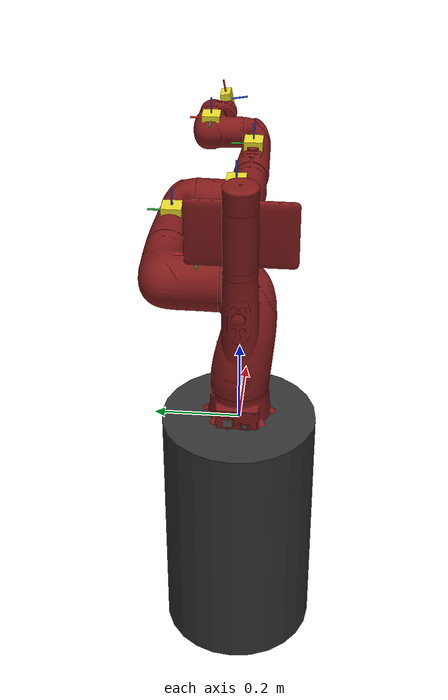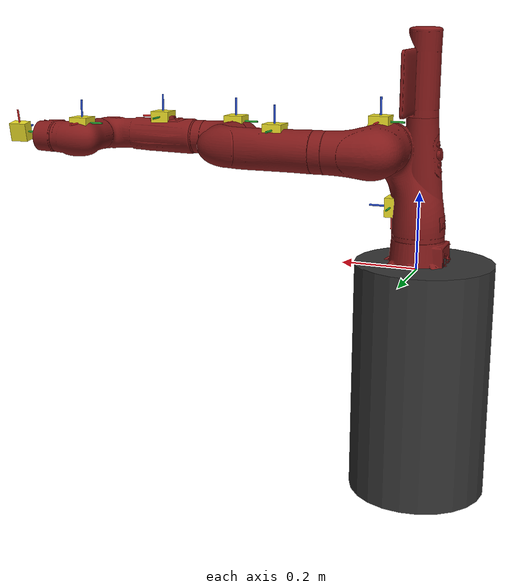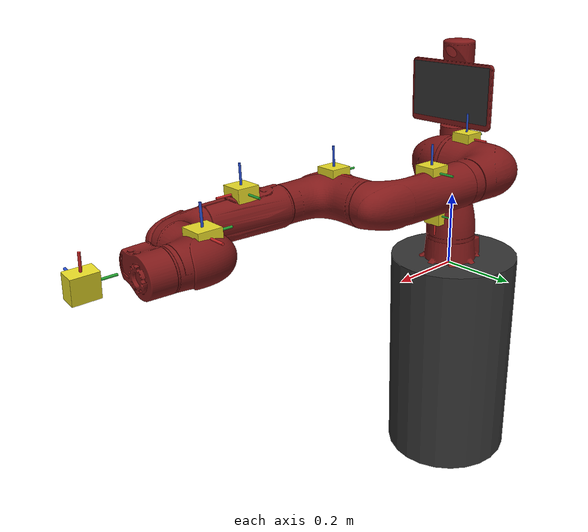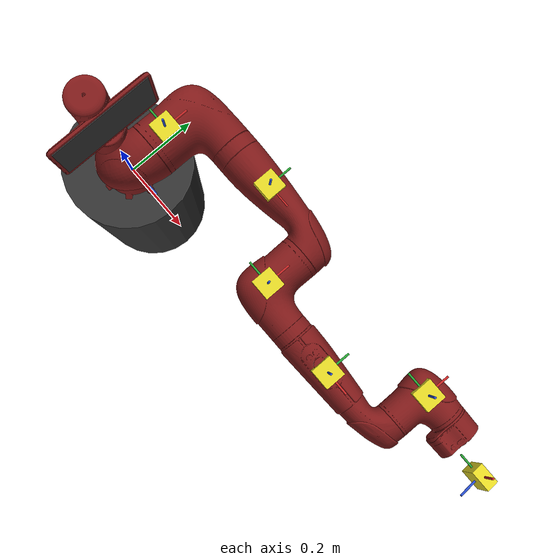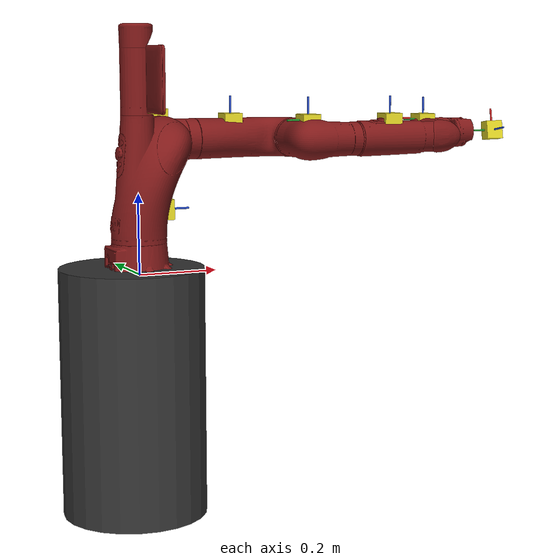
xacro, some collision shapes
<?xml version="1.0" ?>
<robot name="sawyer" xmlns:xacro="http://www.ros.org/wiki/xacro">

  <xacro:arg name="gazebo" default="false"/>
  <xacro:arg name="pedestal" default="true"/>
  <xacro:arg name="static" default="true"/>
  <xacro:arg name="electric_gripper" default="false"/>
  <!-- Sawyer Base URDF -->
  <xacro:include filename="$(find sawyer_description)/urdf/sawyer_base.urdf.xacro">
    <xacro:arg name="gazebo" value="${gazebo}"/>
    <xacro:arg name="pedestal" value="${pedestal}"/>
  </xacro:include>
  <xacro:if value="$(arg gazebo)">
  <xacro:include filename="$(find sawyer_description)/urdf/sawyer_base.gazebo.xacro">
    <xacro:arg name="static" value="${static}"/>
    <xacro:arg name="pedestal" value="${pedestal}"/>
  </xacro:include>
  </xacro:if>
  <!-- Electric Gripper End Effector -->
  <xacro:if value="$(arg electric_gripper)">
  <xacro:include filename="$(find sawyer_description)/urdf/sawyer_electric_gripper.urdf.xacro">
    <xacro:arg name="gazebo" value="${gazebo}"/>
  </xacro:include>
  </xacro:if>

  <xacro:include filename="$(find ros_robotic_skin)/robots/imu.xacro"/>
  <xacro:imu imu_id="0" xyz="0.07 0 0.08" rpy="0 1.57 0" connected_to="right_l0"/>
  <xacro:imu imu_id="1" xyz="-0.07 0 0.05" rpy="0 -1.57 0" connected_to="right_l1"/>
  <xacro:imu imu_id="2" xyz="-0.05 0.0 0.1" rpy="0 -1.57 0" connected_to="right_l2"/>
  <xacro:imu imu_id="3" xyz="-0.05 0 -0.10" rpy="0 -1.57 0" connected_to="right_l3"/>
  <xacro:imu imu_id="4" xyz="-0.05 0 0.10" rpy="0 -1.57 0" connected_to="right_l4"/>
  <xacro:imu imu_id="5" xyz="-0.04 0 0.1" rpy="0 -1.57 0" connected_to="right_l5"/>
  <xacro:imu imu_id="6" xyz="0.0 0.03 0.1" rpy="-1.57 0 0" connected_to="right_l6"/>
</robot>

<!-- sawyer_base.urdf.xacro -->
<robot name="sawyer" xmlns:xacro="http://www.ros.org/wiki/xacro">
  <xacro:arg name="gazebo" default="false"/>
  <xacro:arg name="pedestal" default="true"/>
  <material name="black">
    <color rgba="0 0 0 1"/>
  </material>
  <material name="darkgray">
    <color rgba=".2 .2 .2 1"/>
  </material>
  <material name="darkred">
    <color rgba=".5 .1 .1 1"/>
  </material>
  <material name="sawyer_red">
    <color rgba=".5 .1 .1 1"/>
  </material>
  <material name="sawyer_gray">
    <color rgba="0.75294 0.75294 0.75294 1"/>
  </material>
  <link name="base"/>
  <link name="torso">
    <visual>
      <origin rpy="0 0 0" xyz="0 0 0"/>
      <geometry>
        <box size="0.001 0.001 0.001"/>
      </geometry>
      <material name="darkgray">
        <color rgba=".2 .2 .2 1"/>
      </material>
    </visual>
<xacro:unless value="$(arg gazebo)">
    <inertial>
      <origin rpy="0 0 0" xyz="0.000000 0.000000 0.000000"/>
      <mass value="0.0001"/>
      <inertia ixx="1e-08" ixy="0" ixz="0" iyy="1e-08" iyz="0" izz="1e-08"/>
    </inertial>
</xacro:unless>
  </link>
<xacro:if value="$(arg pedestal)">
  <link name="pedestal">
    <visual>
      <origin rpy="1.57079632679 0 -1.57079632679" xyz="0.26 0.345 -0.91488"/>
      <geometry>
        <mesh filename="package://sawyer_description/meshes/sawyer_pv/pedestal.DAE"/>
      </geometry>
      <material name="darkgray"/>
    </visual>
    <collision>
      <origin rpy="0 0 0" xyz="-0.02 0 -0.29"/>
      <geometry>
        <cylinder length="0.62" radius="0.18"/>
      </geometry>
    </collision>
    <inertial>
      <origin rpy="0 0 0" xyz="0 0 -0.5"/>
      <mass value="60.86397744"/>
      <inertia ixx="5.0635929" ixy="0.00103417" ixz="0.80199628" iyy="6.08689388" iyz="0.00105311" izz="4.96191932"/>
    </inertial>
  </link>
  <link name="controller_box">
    <collision>
      <origin rpy="0 0 0" xyz="-0.325 0 -0.38"/>
      <geometry>
        <box size="0.22 0.4 0.53"/>
      </geometry>
    </collision>
  </link>
  <joint name="controller_box_fixed" type="fixed">
    <origin rpy="0 0 0" xyz="0.0 0.0 0.0"/>
    <parent link="base"/>
    <child link="controller_box"/>
  </joint>
  <link name="pedestal_feet">
    <collision>
      <origin rpy="0 0 0" xyz="-0.1225 0 -0.758"/>
      <geometry>
        <box size="0.77 0.7 0.31"/>
      </geometry>
    </collision>
  </link>
  <joint name="pedestal_feet_fixed" type="fixed">
    <origin rpy="0 0 0" xyz="0.0 0.0 0.0"/>
    <parent link="base"/>
    <child link="pedestal_feet"/>
  </joint>
  <joint name="pedestal_fixed" type="fixed">
    <origin rpy="0 0 0" xyz="0.0 0.0 0.0"/>
    <parent link="base"/>
    <child link="pedestal"/>
  </joint>
</xacro:if>
  <joint name="right_arm_mount" type="fixed">
    <origin rpy="0 0 0" xyz="0.0 0.0 0.0"/>
    <parent link="base"/>
    <child link="right_arm_base_link"/>
  </joint>
  <joint name="torso_t0" type="fixed">
    <origin rpy="0 0 0" xyz="0 0 0"/>
    <parent link="base"/>
    <child link="torso"/>
  </joint>
  <link name="right_arm_base_link">
    <inertial>
      <origin rpy="0 0 0" xyz="-0.0006241 -2.8025E-05 0.065404"/>
      <mass value="2.0687"/>
      <inertia ixx="0.0067599" ixy="-4.2024E-05" ixz="-6.1904E-07" iyy="0.0067877" iyz="1.5888E-05" izz="0.0074031"/>
    </inertial>
    <visual>
      <origin rpy="0 0 0" xyz="0 0 0"/>
      <geometry>
        <mesh filename="package://sawyer_description/meshes/sawyer_pv/base.DAE"/>
      </geometry>
      <material name="sawyer_red"/>
    </visual>
    <collision>
      <origin rpy="0 0 0" xyz="0 0 0.12"/>
      <geometry>
        <cylinder length="0.24" radius="0.08"/>
      </geometry>
    </collision>
  </link>
  <link name="right_l0">
    <inertial>
      <origin rpy="0 0 0" xyz="0.024366 0.010969 0.14363"/>
      <mass value="5.3213"/>
      <inertia ixx="0.053314" ixy="0.0047093" ixz="0.011734" iyy="0.057902" iyz="0.0080179" izz="0.023659"/>
    </inertial>
    <visual>
      <origin rpy="0 0 0" xyz="0 0 0"/>
      <geometry>
        <mesh filename="package://sawyer_description/meshes/sawyer_mp3/l0.DAE"/>
      </geometry>
      <material name="sawyer_red"/>
    </visual>
    <collision>
      <origin rpy="0 0 0" xyz="0.08 0 0.23"/>
      <geometry>
        <sphere radius="0.07"/>
      </geometry>
    </collision>
  </link>
  <joint name="right_j0" type="revolute">
    <origin rpy="0 0 0" xyz="0 0 0.08"/>
    <parent link="right_arm_base_link"/>
    <child link="right_l0"/>
    <axis xyz="0 0 1"/>
    <limit effort="80.0" lower="-3.0503" upper="3.0503" velocity="1.74"/>
<xacro:if value="$(arg gazebo)">
    <dynamics damping="5.0" friction="2.0"/>
</xacro:if>
  </joint>
  <link name="head">
    <inertial>
      <origin rpy="0 0 0" xyz="0.0053207 -2.6549E-05 0.1021"/>
      <mass value="1.5795"/>
      <inertia ixx="0.011833" ixy="-4.4669E-06" ixz="4.9425E-05" iyy="0.0082709" iyz="4.2124E-07" izz="0.0049661"/>
    </inertial>
    <visual>
      <origin rpy="0 0 0" xyz="0 0 0"/>
      <geometry>
        <mesh filename="package://sawyer_description/meshes/sawyer_pv/head.DAE"/>
      </geometry>
      <material name="sawyer_red"/>
    </visual>
    <collision>
      <origin rpy="0 0 0" xyz="0 0 0.08"/>
      <geometry>
        <sphere radius="0.18"/>
      </geometry>
    </collision>
  </link>
  <joint name="head_pan" type="revolute">
    <origin rpy="0 0 0" xyz="0 0 0.2965"/>
    <parent link="right_l0"/>
    <child link="head"/>
    <axis xyz="0 0 1"/>
    <limit effort="8" lower="-5.0952" upper="0.9064" velocity="1.8"/>
<xacro:if value="$(arg gazebo)">
    <dynamics damping="1.0" friction="0.5"/>
</xacro:if>
  </joint>
  <link name="right_torso_itb">
<xacro:unless value="$(arg gazebo)">
    <inertial>
      <origin rpy="0 0 0" xyz="0.000000 0.000000 0.000000"/>
      <mass value="0.0001"/>
      <inertia ixx="1e-08" ixy="0" ixz="0" iyy="1e-08" iyz="0" izz="1e-08"/>
    </inertial>
</xacro:unless>
  </link>
  <joint name="right_torso_itb" type="fixed">
    <origin rpy="0 -1.57079632679 0" xyz="-.055 0 .22"/>
    <parent link="right_l0"/>
    <child link="right_torso_itb"/>
    <axis xyz="0 0 1"/>
  </joint>
  <link name="right_l1">
    <inertial>
      <origin rpy="0 0 0" xyz="-0.0030849 -0.026811 0.092521"/>
      <mass value="4.505"/>
      <inertia ixx="0.022398" ixy="-0.00023986" ixz="-0.00029362" iyy="0.014613" iyz="-0.0060875" izz="0.017295"/>
    </inertial>
    <visual>
      <origin rpy="0 0 0" xyz="0 0 0"/>
      <geometry>
        <mesh filename="package://sawyer_description/meshes/sawyer_mp3/l1.DAE"/>
      </geometry>
      <material name="sawyer_red"/>
    </visual>
    <collision>
      <origin rpy="0 0 0" xyz="0 0 0.1225"/>
      <geometry>
        <sphere radius="0.07"/>
      </geometry>
    </collision>
  </link>
  <joint name="right_j1" type="revolute">
    <origin rpy="-1.57079632679 1.57079632679 0" xyz="0.081 0.05 0.237"/>
    <parent link="right_l0"/>
    <child link="right_l1"/>
    <axis xyz="0 0 1"/>
    <limit effort="80.0" lower="-3.8095" upper="2.2736" velocity="1.328"/>
<xacro:if value="$(arg gazebo)">
    <dynamics damping="5.0" friction="2.0"/>
</xacro:if>
  </joint>
  <link name="right_l2">
    <inertial>
      <origin rpy="0 0 0" xyz="-0.00016044 -0.014967 0.13582"/>
      <mass value="1.745"/>
      <inertia ixx="0.025506" ixy="4.4101E-06" ixz="1.4955E-05" iyy="0.0253" iyz="-0.0033204" izz="0.0034179"/>
    </inertial>
    <visual>
      <origin rpy="0 0 0" xyz="0 0 0"/>
      <geometry>
        <mesh filename="package://sawyer_description/meshes/sawyer_pv/l2.DAE"/>
      </geometry>
      <material name="sawyer_red"/>
    </visual>
    <collision>
      <origin rpy="0 0 0" xyz="0 0 0.08"/>
      <geometry>
        <cylinder length="0.34" radius="0.06"/>
      </geometry>
    </collision>
  </link>
  <joint name="right_j2" type="revolute">
    <origin rpy="1.57079632679 0 0" xyz="0 -0.14 0.1425"/>
    <parent link="right_l1"/>
    <child link="right_l2"/>
    <axis xyz="0 0 1"/>
    <limit effort="40.0" lower="-3.0426" upper="3.0426" velocity="1.957"/>
<xacro:if value="$(arg gazebo)">
    <dynamics damping="5.0" friction="2.0"/>
</xacro:if>
  </joint>
  <link name="right_l3">
    <inertial>
      <origin rpy="0 0 0" xyz="-0.0048135 -0.0281 -0.084154"/>
      <mass value="2.5097"/>
      <inertia ixx="0.01016" ixy="-9.7452E-06" ixz="0.00026624" iyy="0.0065685" iyz="0.0030316" izz="0.0069078"/>
    </inertial>
    <visual>
      <origin rpy="0 0 0" xyz="0 0 0"/>
      <geometry>
        <mesh filename="package://sawyer_description/meshes/sawyer_pv/l3.DAE"/>
      </geometry>
      <material name="sawyer_red"/>
    </visual>
    <collision>
      <origin rpy="0 0 0" xyz="0 -0.01 -0.12"/>
      <geometry>
        <sphere radius="0.06"/>
      </geometry>
    </collision>
  </link>
  <joint name="right_j3" type="revolute">
    <origin rpy="-1.57079632679 0 0" xyz="0 -0.042 0.26"/>
    <parent link="right_l2"/>
    <child link="right_l3"/>
    <axis xyz="0 0 1"/>
    <limit effort="40.0" lower="-3.0439" upper="3.0439" velocity="1.957"/>
 <xacro:if value="$(arg gazebo)">
    <dynamics damping="1.0" friction="0.5"/>
</xacro:if>
  </joint>
  <link name="right_l4">
    <inertial>
      <origin rpy="0 0 0" xyz="-0.0018844 0.0069001 0.1341"/>
      <mass value="1.1136"/>
      <inertia ixx="0.013557" ixy="1.8109E-05" ixz="0.00013523" iyy="0.013555" iyz="0.0010561" izz="0.0013658"/>
    </inertial>
    <visual>
      <origin rpy="0 0 0" xyz="0 0 0"/>
      <geometry>
        <mesh filename="package://sawyer_description/meshes/sawyer_pv/l4.DAE"/>
      </geometry>
      <material name="sawyer_red"/>
    </visual>
    <collision>
      <origin rpy="0 0 0" xyz="0 0 0.11"/>
      <geometry>
        <cylinder length="0.30" radius="0.045"/>
      </geometry>
    </collision>
  </link>
  <joint name="right_j4" type="revolute">
    <origin rpy="1.57079632679 0 0" xyz="0 -0.125 -0.1265"/>
    <parent link="right_l3"/>
    <child link="right_l4"/>
    <axis xyz="0 0 1"/>
    <limit effort="9.0" lower="-2.9761" upper="2.9761" velocity="3.485"/>
<xacro:if value="$(arg gazebo)">
    <dynamics damping="2.0" friction="1.0"/>
</xacro:if>
  </joint>
  <link name="right_arm_itb">
<xacro:unless value="$(arg gazebo)">
    <inertial>
      <origin rpy="0 0 0" xyz="0.000000 0.000000 0.000000"/>
      <mass value="0.0001"/>
      <inertia ixx="1e-08" ixy="0" ixz="0" iyy="1e-08" iyz="0" izz="1e-08"/>
    </inertial>
</xacro:unless>
  </link>
  <joint name="right_arm_itb" type="fixed">
    <origin rpy="0 -1.57079632679 0" xyz="-.055 0 .075"/>
    <parent link="right_l4"/>
    <child link="right_arm_itb"/>
    <axis xyz="0 0 1"/>
  </joint>
  <link name="right_l5">
    <inertial>
      <origin rpy="0 0 0" xyz="0.0061133 -0.023697 0.076416"/>
      <mass value="1.5625"/>
      <inertia ixx="0.0047328" ixy="0.00011526" ixz="4.6269E-05" iyy="0.0029676" iyz="-0.0011557" izz="0.0031762"/>
    </inertial>
    <visual>
      <origin rpy="0 0 0" xyz="0 0 0"/>
      <geometry>
        <mesh filename="package://sawyer_description/meshes/sawyer_pv/l5.DAE"/>
      </geometry>
      <material name="sawyer_red"/>
    </visual>
    <collision>
      <origin rpy="0 0 0" xyz="0 0 0.1"/>
      <geometry>
        <sphere radius="0.06"/>
      </geometry>
    </collision>
  </link>
  <joint name="right_j5" type="revolute">
    <origin rpy="-1.57079632679 0 0" xyz="0 0.031 0.275"/>
    <parent link="right_l4"/>
    <child link="right_l5"/>
    <axis xyz="0 0 1"/>
    <limit effort="9.0" lower="-2.9761" upper="2.9761" velocity="3.485"/>
<xacro:if value="$(arg gazebo)">
    <dynamics damping="1.0" friction="0.5"/>
</xacro:if>
  </joint>
  <link name="right_hand_camera"/>
  <joint name="right_hand_camera" type="fixed">
    <origin rpy="0 1.57079632679 0" xyz="0.039552 -0.033 0.0695"/>
    <parent link="right_l5"/>
    <child link="right_hand_camera"/>
    <axis xyz="0 0 0"/>
  </joint>
  <link name="right_wrist"/>
  <joint name="right_wrist" type="fixed">
    <origin rpy="1.57079632679 0 0" xyz="0 0 0.10541"/>
    <parent link="right_l5"/>
    <child link="right_wrist"/>
    <axis xyz="0 0 0"/>
  </joint>
  <link name="right_l6">
    <inertial>
      <origin rpy="0 0 0" xyz="-8.0726E-06 0.0085838 -0.0049566"/>
      <mass value="0.3292"/>
      <inertia ixx="0.00031105" ixy="1.4771E-06" ixz="-3.7074E-07" iyy="0.00021549" iyz="-8.4533E-06" izz="0.00035976"/>
    </inertial>
    <visual>
      <origin rpy="0 0 0" xyz="0 0 0"/>
      <geometry>
        <mesh filename="package://sawyer_description/meshes/sawyer_mp1/l6.DAE"/>
      </geometry>
      <material name="sawyer_red"/>
    </visual>
    <collision>
      <origin rpy="0 0 0" xyz="0 0.015 -0.01"/>
      <geometry>
        <cylinder length="0.05" radius="0.055"/>
      </geometry>
    </collision>
  </link>
  <joint name="right_j6" type="revolute">
    <origin rpy="-1.57079632679 -0.17453 3.1416" xyz="0 -0.11 0.1053"/>
    <parent link="right_l5"/>
    <child link="right_l6"/>
    <axis xyz="0 0 1"/>
<xacro:if value="$(arg gazebo)">
    <limit effort="9.0" lower="-3.14" upper="3.14" velocity="4.545"/>
    <dynamics damping="1.0" friction="0.5"/>
</xacro:if>
<xacro:unless value="$(arg gazebo)">
    <limit effort="9.0" lower="-4.7124" upper="4.7124" velocity="4.545"/>
</xacro:unless>
  </joint>
  <link name="right_hand">
    <collision>
      <origin rpy="0 0 0" xyz="0 0 0.02"/>
      <geometry>
        <cylinder length="0.03" radius="0.035"/>
      </geometry>
    </collision>
<xacro:if value="$(arg gazebo)">
    <inertial>
      <origin rpy="0 0 0" xyz="0 0.1 0"/>
      <mass value="0.01"/>
      <inertia ixx="0.01" ixy="0.01" ixz="0.01" iyy="0.01" iyz="0.01" izz="0.01"/>
  </inertial>
</xacro:if>
<xacro:unless value="$(arg gazebo)">
    <inertial>
      <origin rpy="0 0 0" xyz="1.0E-08 1.0E-08 1.0E-08"/>
      <mass value="1.0E-08"/>
      <inertia ixx="1.0E-08" ixy="1.0E-08" ixz="1.0E-08" iyy="1.0E-08" iyz="1.0E-08" izz="1.0E-08"/>
    </inertial>
</xacro:unless>
  </link>
  <joint name="right_hand" type="fixed">
    <origin rpy="0 0 1.570796" xyz="0 0 0.0245"/>
    <axis xyz="0 0 1"/>
    <parent link="right_l6"/>
    <child link="right_hand"/>
  </joint>
  <link name="right_l1_2">
<xacro:unless value="$(arg gazebo)">
    <inertial>
      <origin rpy="0 0 0" xyz="1.0E-08 1.0E-08 1.0E-08"/>
      <mass value="1.0E-08"/>
      <inertia ixx="1.0E-08" ixy="1.0E-08" ixz="1.0E-08" iyy="1.0E-08" iyz="1.0E-08" izz="1.0E-08"/>
    </inertial>
</xacro:unless>
    <collision>
      <origin rpy="0 0 0" xyz="0 0 0.035"/>
      <geometry>
        <cylinder length="0.14" radius="0.07"/>
      </geometry>
    </collision>
  </link>
  <joint name="right_j1_2" type="fixed">
    <origin rpy="0 0 0" xyz="0 0 0"/>
    <parent link="right_l1"/>
    <child link="right_l1_2"/>
    <axis xyz="0 0 1"/>
  </joint>
  <link name="right_l2_2">
<xacro:unless value="$(arg gazebo)">
    <inertial>
      <origin rpy="0 0 0" xyz="1.0E-08 1.0E-08 1.0E-08"/>
      <mass value="1.0E-08"/>
      <inertia ixx="1.0E-08" ixy="1.0E-08" ixz="1.0E-08" iyy="1.0E-08" iyz="1.0E-08" izz="1.0E-08"/>
    </inertial>
</xacro:unless>
    <collision>
      <origin rpy="0 0 0" xyz="0 0 0.26"/>
      <geometry>
        <sphere radius="0.06"/>
      </geometry>
    </collision>
  </link>
  <joint name="right_j2_2" type="fixed">
    <origin rpy="0 0 0" xyz="0 0 0"/>
    <parent link="right_l2"/>
    <child link="right_l2_2"/>
    <axis xyz="0 0 1"/>
  </joint>
  <link name="right_l4_2">
<xacro:unless value="$(arg gazebo)">
    <inertial>
      <origin rpy="0 0 0" xyz="1.0E-08 1.0E-08 1.0E-08"/>
      <mass value="1.0E-08"/>
      <inertia ixx="1.0E-08" ixy="1.0E-08" ixz="1.0E-08" iyy="1.0E-08" iyz="1.0E-08" izz="1.0E-08"/>
    </inertial>
</xacro:unless>
    <collision>
      <origin rpy="0 0 0" xyz="0 0.01 0.26"/>
      <geometry>
        <sphere radius="0.06"/>
      </geometry>
    </collision>
  </link>
  <joint name="right_j4_2" type="fixed">
    <origin rpy="0 0 0" xyz="0 0 0"/>
    <parent link="right_l4"/>
    <child link="right_l4_2"/>
    <axis xyz="0 0 1"/>
  </joint>
  <link name="screen">
    <visual>
      <origin rpy="0 0 0" xyz="0 0 0"/>
      <geometry>
        <box size="0.24 0.14 0.002"/>
      </geometry>
      <material name="darkgray"/>
    </visual>
    <collision>
      <origin rpy="0 0 0" xyz="0 0 0"/>
      <geometry>
        <sphere radius="0.001"/>
      </geometry>
    </collision>
<xacro:unless value="$(arg gazebo)">
    <inertial>
      <origin rpy="0 0 0" xyz="0 0 0"/>
      <mass value="0.0001"/>
      <inertia ixx="1e-08" ixy="0" ixz="0" iyy="1e-08" iyz="0" izz="1e-08"/>
    </inertial>
</xacro:unless>
  </link>
  <joint name="display_joint" type="fixed">
    <origin rpy="1.57079632679 0 1.57079632679" xyz="0.03 0.0 0.105"/>
    <parent link="head"/>
    <child link="screen"/>
  </joint>
  <link name="head_camera"/>
  <joint name="head_camera" type="fixed">
    <origin rpy="-2.1293 0 -1.57079632679" xyz="0.0228027 0 0.216572"/>
    <parent link="head"/>
    <child link="head_camera"/>
    <axis xyz="0 0 0"/>
  </joint>
</robot>

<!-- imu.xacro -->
<robot xmlns:xacro="http://www.ros.org/wiki/xacro" name="imu">

    <xacro:macro name="imu" params="imu_id:='0' xyz:='0 0 0' rpy:='0 0 0' gravity:='true' type:='fixed' freq:='100' connected_to:=''">
        <!-- Connect IMU to the world if not specified -->
        <xacro:if value="${connected_to == ''}">
            <joint name="imu${imu_id}_to_world" type="${type}">
                <!-- XYZ, RPY from parent Visual Origin (Center o Gravity) -->
                <!-- in this case it's 0 0 0-->
                <parent link="world" />
                <child link="imu_link${imu_id}" />
                <origin rpy="${rpy}" xyz="${xyz}"/>
            </joint>
        </xacro:if>

        <!-- Connect IMU to ${connected_to} if specified -->
        <xacro:if value="${connected_to != ''}">
            <joint name="imu${imu_id}_to_${connected_to}" type="${type}">
                <parent link="${connected_to}"/>
                <child link="imu_link${imu_id}"/>
                <origin rpy="${rpy}" xyz="${xyz}"/>
            </joint>
        </xacro:if>

        <!-- XYZ, RPY from the joint-->
        <!-- in this case it's imu_to_world${imu_id}-->
        <!-- To set the CoG to the joint, do not add any displacement -->
        <!-- To set the box base to the joint, add displacement-->
        <xacro:property name="boxxy" value="0.05"/>
        <xacro:property name="boxz" value="0.03"/>
        <xacro:property name="displacement" value="${boxz}"/>
        <link name="imu_link${imu_id}">
            <inertial>
                <origin xyz="0 0 0" rpy="0 0 0"/>
                <mass value="0.01"/>
                <inertia ixx="0.01" ixy="0.0" ixz="0.0" iyy="0.01" iyz="0.0" izz="0.01"/>
            </inertial>
            <visual>
                <origin xyz="0 0 0" rpy="0 0 0"/>
                <geometry>
                    <box size="${boxxy} ${boxxy} ${boxz}"/>
                </geometry>
            </visual>
        </link>

        <gazebo reference="imu_link${imu_id}">
            <material>Gazebo/YellowGlow</material>
            <gravity>${gravity}</gravity>
            <mu1>20</mu1>
            <mu2>20</mu2>
            <sensor name="imu_sensor${imu_id}" type="imu">
                <always_on>true</always_on>
                <update_rate>${freq}</update_rate>
                <visualize>true</visualize>
                <topic>__default_topic__</topic>
                <plugin filename="libgazebo_ros_imu_sensor.so" name="imu_plugin">
                    <topicName>imu_data${imu_id}</topicName>
                    <bodyName>imu_link${imu_id}</bodyName>
                    <updateRateHZ>${freq}</updateRateHZ>
                    <gaussianNoise>0.0</gaussianNoise>
                    <xyzOffset>0.0 0.0 0.0</xyzOffset>
                    <rpyOffset>0 0 0</rpyOffset>
                    <frameName>imu_link${imu_id}</frameName>
                </plugin>
                <pose>0 0 0 0 0 0</pose>
            </sensor>
        </gazebo>

        <!--                    AXIS                    -->
        <joint name="imu${imu_id}_to_xaxis" type="fixed">
            <parent link="imu_link${imu_id}"/>
            <child link="imu_link${imu_id}_xaxis"/>
            <origin rpy="0 1.57 0" xyz="0 0 0"/>
        </joint>
        <joint name="imu${imu_id}_to_yaxis" type="fixed">
            <parent link="imu_link${imu_id}"/>
            <child link="imu_link${imu_id}_yaxis"/>
            <origin rpy="-1.57 0 0" xyz="0 0 0"/>
        </joint>
        <joint name="imu${imu_id}_to_zaxis" type="fixed">
            <parent link="imu_link${imu_id}"/>
            <child link="imu_link${imu_id}_zaxis"/>
            <origin rpy="0 0 0" xyz="0 0 0"/>
        </joint>

        <link name="imu_link${imu_id}_xaxis">
            <inertial>
                <origin xyz="0 0 ${boxz}" rpy="0 0 0"/>
                <mass value="0.001"/>
                <inertia ixx="0.001" ixy="0.0" ixz="0.0" iyy="0.001" iyz="0.0" izz="0.001"/>
            </inertial>
            <visual>
                <origin xyz="0 0 ${boxz}" rpy="0 0 0"/>
                <geometry>
                    <cylinder radius="${boxxy/20}" length="${2*boxz}"/>
                </geometry>
            </visual>
        </link>
        <link name="imu_link${imu_id}_yaxis">
            <inertial>
                <origin xyz="0 0 ${boxz}" rpy="0 0 0"/>
                <mass value="0.001"/>
                <inertia ixx="0.001" ixy="0.0" ixz="0.0" iyy="0.001" iyz="0.0" izz="0.001"/>
            </inertial>
            <visual>
                <origin xyz="0 0 ${boxz}" rpy="0 0 0"/>
                <geometry>
                    <cylinder radius="${boxxy/20}" length="${2*boxz}"/>
                </geometry>
            </visual>
        </link>
        <link name="imu_link${imu_id}_zaxis">
            <inertial>
                <origin xyz="0 0 ${boxz}" rpy="0 0 0"/>
                <mass value="0.001"/>
                <inertia ixx="0.001" ixy="0.0" ixz="0.0" iyy="0.001" iyz="0.0" izz="0.001"/>
            </inertial>
            <visual>
                <origin xyz="0 0 ${boxz}" rpy="0 0 0"/>
                <geometry>
                    <cylinder radius="${boxxy/20}" length="${2*boxz}"/>
                </geometry>
            </visual>
        </link>
        <gazebo reference="imu_link${imu_id}_xaxis">
            <material>Gazebo/Red</material>
        </gazebo>
        <gazebo reference="imu_link${imu_id}_yaxis">
            <material>Gazebo/Green</material>
        </gazebo>
        <gazebo reference="imu_link${imu_id}_zaxis">
            <material>Gazebo/Blue</material>
        </gazebo>
    </xacro:macro>
</robot>
